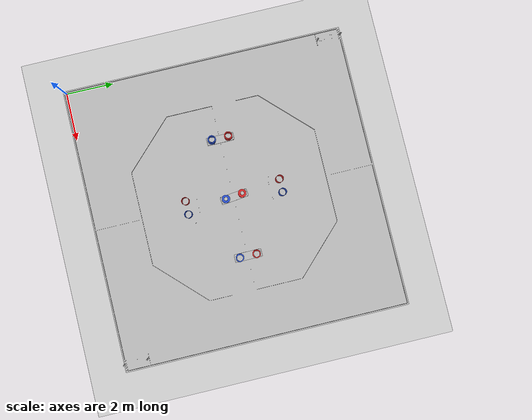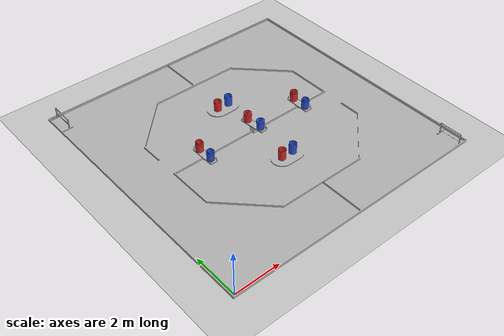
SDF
<?xml version="1.0" ?>
<sdf version="1.6">
  <world name="default">
    <include>
      <uri>model://sun</uri>
    </include>
    <include>
      <uri>model://ground_plane</uri>
    </include>
    <include>
      <uri>model://field_assem_v1</uri>
      <pose>0 0 0 0 0 -1.57079632</pose>
    </include>
        <gui>
      <camera name='user_camera'>
        <pose frame=''>5.60 5.83 16.93 0 1.57 1.57</pose>
      </camera>
    </gui>
  </world>
</sdf>

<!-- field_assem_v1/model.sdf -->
<sdf version="1.6">
	<model name="field_assem_v1">
		<pose>0 0 0 0 0 0</pose>
		<link name="pot1_body_v1:1">
			<pose>-7.880812996747558 5.5981067586119675 0.03600000000000021 0.0 -0.0 0.0</pose>
			<inertial>
				<mass>35.24424621082115</mass>
				<pose>0.0 0.0 0.23200000000000026 -0.0 -0.0 -0.0</pose>
				<inertia>
					<ixx>1.0506955939961597</ixx>
					<ixy>0.0</ixy>
					<ixz>0.0</ixz>
					<iyy>1.0506955939959735</iyy>
					<iyz>0.0</iyz>
					<izz>0.8367336492910982</izz>
				</inertia>
			</inertial>
			<collision name="pot1_body_v1:1_collision">
				<geometry>
					<mesh>
						<uri>model://field_assem_v1/meshes/pot1_body_v1.stl</uri>
					</mesh>
				</geometry>
			</collision>
			<visual name="pot1_body_v1:1_visual">
				<geometry>
					<mesh>
						<uri>model://field_assem_v1/meshes/pot1_body_v1.stl</uri>
					</mesh>
				</geometry>
				<material>
					<script>
						<uri>model://field_assem_v1/materials/pot_texture_red.material</uri>
						<name>PotTextureRed</name>
					</script>
        		</material>
			</visual>
		</link>
		<link name="pot1_body_v1:2">
			<pose>-7.880812996747559 6.158106758611967 0.036000000000000074 0.0 -0.0 0.0</pose>
			<inertial>
				<mass>35.24424621082115</mass>
				<pose>0.0 0.0 0.2320000000000002 -0.0 -0.0 -0.0</pose>
				<inertia>
					<ixx>1.0506955939959735</ixx>
					<ixy>0.0</ixy>
					<ixz>0.0</ixz>
					<iyy>1.0506955939959735</iyy>
					<iyz>0.0</iyz>
					<izz>0.8367336492910982</izz>
				</inertia>
			</inertial>
			<collision name="pot1_body_v1:2_collision">
				<geometry>
					<mesh>
						<uri>model://field_assem_v1/meshes/pot1_body_v1.stl</uri>
					</mesh>
				</geometry>
			</collision>
			<visual name="pot1_body_v1:2_visual">
				<geometry>
					<mesh>
						<uri>model://field_assem_v1/meshes/pot1_body_v1.stl</uri>
					</mesh>
				</geometry>
				<material>
					<script>
						<uri>model://field_assem_v1/materials/pot_texture_blue.material</uri>
						<name>PotTextureBlue</name>
					</script>
        		</material>
			</visual>
		</link>
		<link name="pot1_body_v1:3">
			<pose>-3.8808129967475584 5.5981067586119675 0.03599999999999972 0.0 -0.0 0.0</pose>
			<inertial>
				<mass>35.24424621082115</mass>
				<pose>0.0 0.0 0.23200000000000023 -0.0 -0.0 -0.0</pose>
				<inertia>
					<ixx>1.0506955939961597</ixx>
					<ixy>0.0</ixy>
					<ixz>0.0</ixz>
					<iyy>1.0506955939959735</iyy>
					<iyz>0.0</iyz>
					<izz>0.8367336492910982</izz>
				</inertia>
			</inertial>
			<collision name="pot1_body_v1:3_collision">
				<geometry>
					<mesh>
						<uri>model://field_assem_v1/meshes/pot1_body_v1.stl</uri>
					</mesh>
				</geometry>
			</collision>
			<visual name="pot1_body_v1:3_visual">
				<geometry>
					<mesh>
						<uri>model://field_assem_v1/meshes/pot1_body_v1.stl</uri>
					</mesh>
				</geometry>
				<material>
					<script>
						<uri>model://field_assem_v1/materials/pot_texture_red.material</uri>
						<name>PotTextureRed</name>
					</script>
        		</material>
			</visual>
		</link>
		<link name="pot1_body_v1:4">
			<pose>-3.8808129967475584 6.158106758611967 0.03599999999999971 0.0 -0.0 0.0</pose>
			<inertial>
				<mass>35.24424621082115</mass>
				<pose>0.0 0.0 0.2320000000000002 -0.0 -0.0 -0.0</pose>
				<inertia>
					<ixx>1.0506955939959735</ixx>
					<ixy>0.0</ixy>
					<ixz>0.0</ixz>
					<iyy>1.0506955939959735</iyy>
					<iyz>0.0</iyz>
					<izz>0.8367336492910982</izz>
				</inertia>
			</inertial>
			<collision name="pot1_body_v1:4_collision">
				<geometry>
					<mesh>
						<uri>model://field_assem_v1/meshes/pot1_body_v1.stl</uri>
					</mesh>
				</geometry>
			</collision>
			<visual name="pot1_body_v1:4_visual">
				<geometry>
					<mesh>
						<uri>model://field_assem_v1/meshes/pot1_body_v1.stl</uri>
					</mesh>
				</geometry>
				<material>
					<script>
						<uri>model://field_assem_v1/materials/pot_texture_blue.material</uri>
						<name>PotTextureBlue</name>
					</script>
        		</material>
			</visual>
		</link>
		<link name="pot23_base_top_v1:1">
			<pose>-6.420812996747559 3.5081067586119676 0.1 0.0 -0.0 0.0</pose>
			<inertial>
				<mass>109.17510713039513</mass>
				<pose>0.539999999999969 -0.1299999999999999 0.01930494514536174 -0.0 -0.0 -0.0</pose>
				<inertia>
					<ixx>1.0349232733963056</ixx>
					<ixy>-3.725290298461914e-13</ixy>
					<ixz>2.3283064365386963e-13</ixz>
					<iyy>12.363277697830647</iyy>
					<iyz>0.0</iyz>
					<izz>13.353196003446728</izz>
				</inertia>
			</inertial>
			<collision name="pot23_base_top_v1:1_collision">
				<geometry>
					<mesh>
						<uri>model://field_assem_v1/meshes/pot23_base_top_v1.stl</uri>
					</mesh>
				</geometry>
			</collision>
			<visual name="pot23_base_top_v1:1_visual">
				<geometry>
					<mesh>
						<uri>model://field_assem_v1/meshes/pot23_base_top_v1.stl</uri>
					</mesh>
				</geometry>
			</visual>
		</link>
		<link name="pot23_base_top_v1:2">
			<pose>-6.431691074060507 5.949052822181358 0.30000000000000054 -6.749535653827448e-19 -6.21579500510616e-18 0.10816305240932739</pose>
			<inertial>
				<mass>109.17510713039513</mass>
				<pose>0.5399999999999692 -0.1300000000000005 0.01930494514536179 -0.0 6.252333153385668e-18 -0.1081630524093274</pose>
				<inertia>
					<ixx>1.1669404368966818</ixx>
					<ixy>-1.215774932617694</ixy>
					<ixz>2.3283064365386963e-13</ixz>
					<iyy>12.231260534330458</iyy>
					<iyz>2.3283064365386964e-14</iyz>
					<izz>13.353196003445984</izz>
				</inertia>
			</inertial>
			<collision name="pot23_base_top_v1:2_collision">
				<geometry>
					<mesh>
						<uri>model://field_assem_v1/meshes/pot23_base_top_v1.stl</uri>
					</mesh>
				</geometry>
			</collision>
			<visual name="pot23_base_top_v1:2_visual">
				<geometry>
					<mesh>
						<uri>model://field_assem_v1/meshes/pot23_base_top_v1.stl</uri>
					</mesh>
				</geometry>
			</visual>
		</link>
		<link name="pot23_base_top_v1:3">
			<pose>-6.420812996747559 8.508106758611966 0.10000000000000014 0.0 -0.0 0.0</pose>
			<inertial>
				<mass>109.17510713039513</mass>
				<pose>0.539999999999969 -0.13000000000000078 0.01930494514536174 -0.0 -0.0 -0.0</pose>
				<inertia>
					<ixx>1.034923273397982</ixx>
					<ixy>1.4901161193847657e-12</ixy>
					<ixz>2.2118911147117615e-13</ixz>
					<iyy>12.363277697830647</iyy>
					<iyz>0.0</iyz>
					<izz>13.353196003447474</izz>
				</inertia>
			</inertial>
			<collision name="pot23_base_top_v1:3_collision">
				<geometry>
					<mesh>
						<uri>model://field_assem_v1/meshes/pot23_base_top_v1.stl</uri>
					</mesh>
				</geometry>
			</collision>
			<visual name="pot23_base_top_v1:3_visual">
				<geometry>
					<mesh>
						<uri>model://field_assem_v1/meshes/pot23_base_top_v1.stl</uri>
					</mesh>
				</geometry>
			</visual>
		</link>
		<link name="pot2_body_v1:1">
			<pose>-6.2308129967475585 3.3781067586119677 0.136 0.0 -0.0 0.0</pose>
			<inertial>
				<mass>39.280655951039286</mass>
				<pose>-5.253575352526241e-12 0.0 0.24325216718436232 -0.0 -0.0 -0.0</pose>
				<inertia>
					<ixx>1.1357551215687767</ixx>
					<ixy>0.0</ixy>
					<ixz>2.441229298710823e-11</ixz>
					<iyy>1.1357551102329047</iyy>
					<iyz>0.0</iyz>
					<izz>0.9239097185865045</izz>
				</inertia>
			</inertial>
			<collision name="pot2_body_v1:1_collision">
				<geometry>
					<mesh>
						<uri>model://field_assem_v1/meshes/pot2_body_v1.stl</uri>
					</mesh>
				</geometry>
			</collision>
			<visual name="pot2_body_v1:1_visual">
				<geometry>
					<mesh>
						<uri>model://field_assem_v1/meshes/pot2_body_v1.stl</uri>
					</mesh>
				</geometry>
				<material>
					<script>
						<uri>model://field_assem_v1/materials/pot_texture_red.material</uri>
						<name>PotTextureRed</name>
					</script>
        		</material>
			</visual>
		</link>
		<link name="pot2_body_v1:2">
			<pose>-5.530812996747559 3.3781067586119677 0.136 0.0 -0.0 0.0</pose>
			<inertial>
				<mass>39.280655951039286</mass>
				<pose>-5.252687174106541e-12 0.0 0.24325216718436232 -0.0 -0.0 -0.0</pose>
				<inertia>
					<ixx>1.1357551215687767</ixx>
					<ixy>0.0</ixy>
					<ixz>2.441229298710823e-11</ixz>
					<iyy>1.1357551102329047</iyy>
					<iyz>0.0</iyz>
					<izz>0.9239097185865045</izz>
				</inertia>
			</inertial>
			<collision name="pot2_body_v1:2_collision">
				<geometry>
					<mesh>
						<uri>model://field_assem_v1/meshes/pot2_body_v1.stl</uri>
					</mesh>
				</geometry>
			</collision>
			<visual name="pot2_body_v1:2_visual">
				<geometry>
					<mesh>
						<uri>model://field_assem_v1/meshes/pot2_body_v1.stl</uri>
					</mesh>
				</geometry>
				<material>
					<script>
						<uri>model://field_assem_v1/materials/pot_texture_blue.material</uri>
						<name>PotTextureBlue</name>
					</script>
        		</material>
			</visual>
		</link>
		<link name="pot2_body_v1:3">
			<pose>-6.2308129967475585 8.378106758611967 0.13600000000000015 0.0 -0.0 0.0</pose>
			<inertial>
				<mass>39.280655951039286</mass>
				<pose>-5.253575352526241e-12 0.0 0.2432521671843623 -0.0 -0.0 -0.0</pose>
				<inertia>
					<ixx>1.1357551215693356</ixx>
					<ixy>0.0</ixy>
					<ixz>2.441229298710823e-11</ixz>
					<iyy>1.1357551102329047</iyy>
					<iyz>0.0</iyz>
					<izz>0.9239097185865045</izz>
				</inertia>
			</inertial>
			<collision name="pot2_body_v1:3_collision">
				<geometry>
					<mesh>
						<uri>model://field_assem_v1/meshes/pot2_body_v1.stl</uri>
					</mesh>
				</geometry>
			</collision>
			<visual name="pot2_body_v1:3_visual">
				<geometry>
					<mesh>
						<uri>model://field_assem_v1/meshes/pot2_body_v1.stl</uri>
					</mesh>
				</geometry>
				<material>
					<script>
						<uri>model://field_assem_v1/materials/pot_texture_red.material</uri>
						<name>PotTextureRed</name>
					</script>
        		</material>
			</visual>
		</link>
		<link name="pot2_body_v1:4">
			<pose>-5.530812996747559 8.378106758611967 0.13600000000000015 0.0 -0.0 0.0</pose>
			<inertial>
				<mass>39.280655951039286</mass>
				<pose>-5.252687174106541e-12 0.0 0.2432521671843623 -0.0 -0.0 -0.0</pose>
				<inertia>
					<ixx>1.1357551215693356</ixx>
					<ixy>0.0</ixy>
					<ixz>2.441229298710823e-11</ixz>
					<iyy>1.1357551102329047</iyy>
					<iyz>0.0</iyz>
					<izz>0.9239097185865045</izz>
				</inertia>
			</inertial>
			<collision name="pot2_body_v1:4_collision">
				<geometry>
					<mesh>
						<uri>model://field_assem_v1/meshes/pot2_body_v1.stl</uri>
					</mesh>
				</geometry>
			</collision>
			<visual name="pot2_body_v1:4_visual">
				<geometry>
					<mesh>
						<uri>model://field_assem_v1/meshes/pot2_body_v1.stl</uri>
					</mesh>
				</geometry>
				<material>
					<script>
						<uri>model://field_assem_v1/materials/pot_texture_blue.material</uri>
						<name>PotTextureBlue</name>
					</script>
        		</material>
			</visual>
		</link>
		<link name="pot3_body_v1:1">
			<pose>-6.2287676239908505 5.840323463626151 0.33600000000000063 -7.960077311445726e-18 -7.330609293794257e-17 0.10816305240932739</pose>
			<inertial>
				<mass>38.77109998988285</mass>
				<pose>-3.783445896087627e-12 7.621373856279274e-16 0.23868885407413593 4.622231866529365e-33 7.373700626300519e-17 -0.1081630524093274</pose>
				<inertia>
					<ixx>1.0837450550943613</ixx>
					<ixy>7.912516593933106e-10</ixy>
					<ixz>1.1455267667770386e-11</ixz>
					<iyy>1.0837450478939339</iyy>
					<iyz>1.257285475730896e-12</iyz>
					<izz>0.9038028327528387</izz>
				</inertia>
			</inertial>
			<collision name="pot3_body_v1:1_collision">
				<geometry>
					<mesh>
						<uri>model://field_assem_v1/meshes/pot3_body_v1.stl</uri>
					</mesh>
				</geometry>
			</collision>
			<visual name="pot3_body_v1:1_visual">
				<geometry>
					<mesh>
						<uri>model://field_assem_v1/meshes/pot3_body_v1.stl</uri>
					</mesh>
				</geometry>
				<material>
					<script>
						<uri>model://field_assem_v1/materials/pot_texture_red.material</uri>
						<name>PotTextureRed</name>
					</script>
        		</material>
			</visual>
		</link>
		<link name="pot3_body_v1:2">
			<pose>-5.532858369504272 5.9158900535977805 0.3360000000000006 -5.760644815658954e-18 -7.194623220049304e-17 0.07989829725515836</pose>
			<inertial>
				<mass>38.77109998988285</mass>
				<pose>-3.785030373514374e-12 1.1553146526598238e-16 0.23868885407413604 -0.0 7.217648756028129e-17 -0.07989829725515836</pose>
				<inertia>
					<ixx>1.0837450551332906</ixx>
					<ixy>5.865469574928284e-10</ixy>
					<ixz>1.1455267667770386e-11</ixz>
					<iyy>1.0837450478551909</iyy>
					<iyz>9.080395102500915e-13</iyz>
					<izz>0.9038028327528387</izz>
				</inertia>
			</inertial>
			<collision name="pot3_body_v1:2_collision">
				<geometry>
					<mesh>
						<uri>model://field_assem_v1/meshes/pot3_body_v1.stl</uri>
					</mesh>
				</geometry>
			</collision>
			<visual name="pot3_body_v1:2_visual">
				<geometry>
					<mesh>
						<uri>model://field_assem_v1/meshes/pot3_body_v1.stl</uri>
					</mesh>
				</geometry>
				<material>
					<script>
						<uri>model://field_assem_v1/materials/pot_texture_blue.material</uri>
						<name>PotTextureBlue</name>
					</script>
        		</material>
			</visual>
		</link>
		<link name="base_pack:1">
			<pose>0.0 0.0 0.0 0.0 -0.0 0.0</pose>
			<inertial>
				<mass>130196.6567032946</mass>
				<pose>-5.8808129847320565 5.878105861722441 -0.0532775767982803 -0.0 -0.0 -0.0</pose>
				<inertia>
					<ixx>1565372.4556409211</ixx>
					<ixy>-1592.9275525474548</ixy>
					<ixz>-0.0001459214687347412</ixz>
					<iyy>1570116.1374727683</iyy>
					<iyz>0.010892210912704467</iyz>
					<izz>3135141.7339782305</izz>
				</inertia>
			</inertial>
			<collision name="base_pack:1_collision">
				<geometry>
					<mesh>
						<uri>model://field_assem_v1/meshes/base_pack.stl</uri>
					</mesh>
				</geometry>
			</collision>
			<visual name="base_pack:1_visual">
				<geometry>
					<mesh>
						<uri>model://field_assem_v1/meshes/base_pack.stl</uri>
					</mesh>
				</geometry>
			</visual>
		</link>
		<joint name="rev10" type="revolute">
			<pose>-7.880812996747559 5.5981067586119675 0.036000000000000074 -0.0 -0.0 -0.0</pose>
			<child>base_pack:1</child>
			<parent>pot1_body_v1:1</parent>
			<axis>
				<xyz>0.0 0.0 1.0</xyz>
			</axis>
		</joint>
		<joint name="rev11" type="revolute">
			<pose>-7.880812996747559 6.158106758611967 0.036000000000000074 -0.0 -0.0 -0.0</pose>
			<child>base_pack:1</child>
			<parent>pot1_body_v1:2</parent>
			<axis>
				<xyz>0.0 0.0 1.0</xyz>
			</axis>
		</joint>
		<joint name="rev12" type="revolute">
			<pose>-3.8808129967475584 5.5981067586119675 0.03599999999999972 -0.0 -0.0 -0.0</pose>
			<child>base_pack:1</child>
			<parent>pot1_body_v1:3</parent>
			<axis>
				<xyz>0.0 0.0 1.0</xyz>
			</axis>
		</joint>
		<joint name="rev13" type="revolute">
			<pose>0.0 0.0 0.0 -0.0 -0.0 -0.0</pose>
			<child>pot1_body_v1:4</child>
			<parent>base_pack:1</parent>
			<axis>
				<xyz>0.0 0.0 1.0</xyz>
			</axis>
		</joint>
		<joint name="rev14" type="revolute">
			<pose>0.54 -0.1299999999999999 0.0 -0.0 -0.0 -0.0</pose>
			<child>pot23_base_top_v1:1</child>
			<parent>base_pack:1</parent>
			<axis>
				<xyz>0.0 0.0 1.0</xyz>
			</axis>
		</joint>
		<joint name="rev15" type="revolute">
			<pose>0.5399999999999996 -0.13000000000000025 -3.4442732662570807e-18 -0.0 6.252333153385668e-18 -0.1081630524093274</pose>
			<child>pot23_base_top_v1:2</child>
			<parent>base_pack:1</parent>
			<axis>
				<xyz>0.0 0.0 1.0</xyz>
			</axis>
		</joint>
		<joint name="rev16" type="revolute">
			<pose>0.54 -0.129999999999999 0.0 -0.0 -0.0 -0.0</pose>
			<child>pot23_base_top_v1:3</child>
			<parent>base_pack:1</parent>
			<axis>
				<xyz>0.0 0.0 1.0</xyz>
			</axis>
		</joint>
		<joint name="rev17" type="revolute">
			<pose>0.0 0.0 0.0 -0.0 -0.0 -0.0</pose>
			<child>pot2_body_v1:1</child>
			<parent>pot23_base_top_v1:1</parent>
			<axis>
				<xyz>0.0 0.0 1.0</xyz>
			</axis>
		</joint>
		<joint name="rev18" type="revolute">
			<pose>0.0 0.0 0.0 -0.0 -0.0 -0.0</pose>
			<child>pot2_body_v1:2</child>
			<parent>pot23_base_top_v1:1</parent>
			<axis>
				<xyz>0.0 0.0 1.0</xyz>
			</axis>
		</joint>
		<joint name="rev19" type="revolute">
			<pose>0.0 0.0 0.0 -0.0 -0.0 -0.0</pose>
			<child>pot2_body_v1:3</child>
			<parent>pot23_base_top_v1:3</parent>
			<axis>
				<xyz>0.0 0.0 1.0</xyz>
			</axis>
		</joint>
		<joint name="rev20" type="revolute">
			<pose>0.0 0.0 0.0 -0.0 -0.0 -0.0</pose>
			<child>pot2_body_v1:4</child>
			<parent>pot23_base_top_v1:3</parent>
			<axis>
				<xyz>0.0 0.0 1.0</xyz>
			</axis>
		</joint>
		<joint name="rev21" type="revolute">
			<pose>9.588087780447057e-17 8.829879741493968e-16 4.1053665947016107e-48 4.622231866529365e-33 7.373700626300519e-17 -0.1081630524093274</pose>
			<child>pot3_body_v1:1</child>
			<parent>pot23_base_top_v1:2</parent>
			<axis>
				<xyz>-6.252333153385669e-18 -2.3933436996283766e-35 1.0000000000000002</xyz>
			</axis>
		</joint>
		<joint name="rev22" type="revolute">
			<pose>0.0 0.0 0.0 -0.0 7.217648756028129e-17 -0.07989829725515836</pose>
			<child>pot3_body_v1:2</child>
			<parent>pot23_base_top_v1:2</parent>
			<axis>
				<xyz>-6.252333153385669e-18 -2.3933436996283766e-35 1.0000000000000002</xyz>
			</axis>
		</joint>
	</model>
</sdf>
